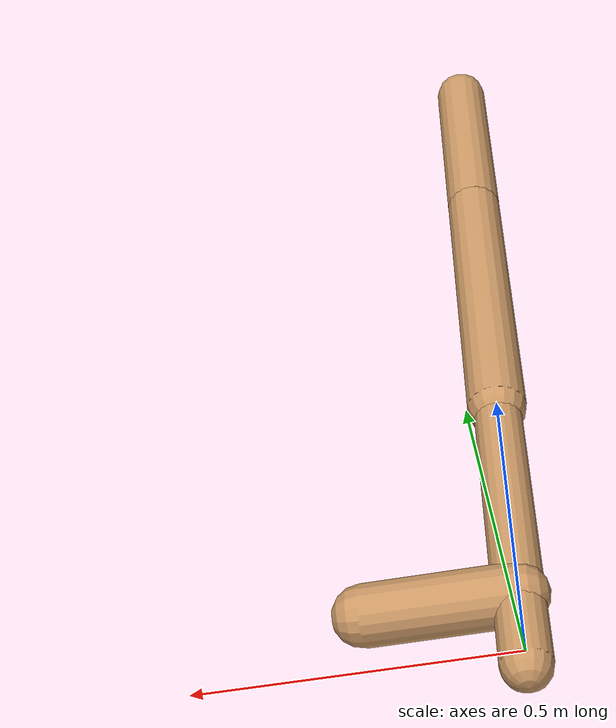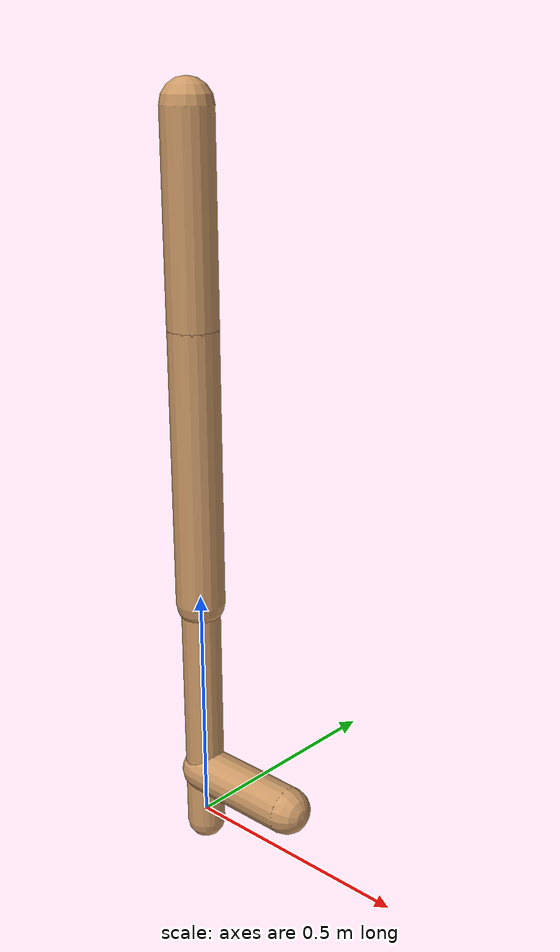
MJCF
<mujoco model="walker2d">
  <compiler angle="degree" coordinate="global" inertiafromgeom="true" />
  <default>
    <joint armature="0.01" damping=".1" limited="true" />
    <geom conaffinity="0" condim="3" contype="1" density="1000" friction="0.8 .1 .1" rgba="0.8 0.6 .4 1" />
  </default>
  <option integrator="RK4" timestep="0.002" />
  <worldbody>

    <body name="torso" pos="0 0 0.23375327696077497">
      <joint armature="0" axis="1 0 0" damping="0" limited="false" name="ignorex" pos="0 0 0" stiffness="0" type="slide" />
      <joint armature="0" axis="0 0 1" damping="0" limited="false" name="ignorez" pos="0 0 0" ref="1.25" stiffness="0" type="slide" />
      <joint armature="0" axis="0 1 0" damping="0" limited="false" name="ignorey" pos="0 0 0" stiffness="0" type="hinge" />
      <geom fromto="0 0 1.45 0 0 1.05" name="torso_geom" size="0.05050087131801726" type="capsule" />
      <body name="thigh">
        <joint axis="0 -1 0" name="thigh_joint" pos="0 0 1.05" range="-150 0" type="hinge" />
        <geom fromto="0.0 0.0 1.05 0.0 0.0 0.4892747635448961" name="thigh_geom" size="0.05025608899652254" type="capsule" />
        <body name="leg" pos="0.0 0.0 -0.1107252364551039">
          <joint axis="0 -1 0" name="leg_joint" pos="0 0 0.6" range="-150 0" type="hinge" />
          <geom fromto="0.0 0.0 0.6 0.0 0.0 -0.02302804050567102" name="leg_geom" size="0.04020487119721804" type="capsule" />
          <body name="foot" pos="0.0 0.0 -0.12302804050567102">
            <joint axis="0 -1 0" name="foot_joint" pos="0 0 0.1" range="-45 45" type="hinge" />
            <geom fromto="-0.0 0.0 0.1 0.23615278396087214 0.0 0.1" name="foot_geom" size="0.048337908175296006" type="capsule" />
          </body>
        </body>
      </body>

      <body name="thigh_left">
        <joint axis="0 -1 0" name="thigh_left_joint" pos="0 0 1.05" range="-150 0" type="hinge" />
        <geom fromto="0.0 0.0 1.05 0.0 0.0 0.4892747635448961" name="thigh_left_geom" rgba=".7 .3 .6 1" size="0.05025608899652254" type="capsule" />
        <body name="leg_left" pos="0.0 0.0 -0.1107252364551039">
          <joint axis="0 -1 0" name="leg_left_joint" pos="0 0 0.6" range="-150 0" type="hinge" />
          <geom fromto="0.0 0.0 0.6 0.0 0.0 -0.02302804050567102" name="leg_left_geom" rgba=".7 .3 .6 1" size="0.04020487119721804" type="capsule" />
          <body name="foot_left" pos="0.0 0.0 -0.12302804050567102">
            <joint axis="0 -1 0" name="foot_left_joint" pos="0 0 0.1" range="-45 45" type="hinge" />
            <geom fromto="-0.0 0.0 0.1 0.23615278396087214 0.0 0.1" name="foot_left_geom" rgba=".7 .3 .6 1" size="0.048337908175296006" type="capsule" />
          </body>
        </body>
      </body>
    </body>
  </worldbody>
  <actuator>

    <motor ctrllimited="true" ctrlrange="-1.0 1.0" gear="100" joint="thigh_joint" />
    <motor ctrllimited="true" ctrlrange="-1.0 1.0" gear="100" joint="leg_joint" />
    <motor ctrllimited="true" ctrlrange="-1.0 1.0" gear="100" joint="foot_joint" />
    <motor ctrllimited="true" ctrlrange="-1.0 1.0" gear="100" joint="thigh_left_joint" />
    <motor ctrllimited="true" ctrlrange="-1.0 1.0" gear="100" joint="leg_left_joint" />
    <motor ctrllimited="true" ctrlrange="-1.0 1.0" gear="100" joint="foot_left_joint" />

  </actuator>
</mujoco>
